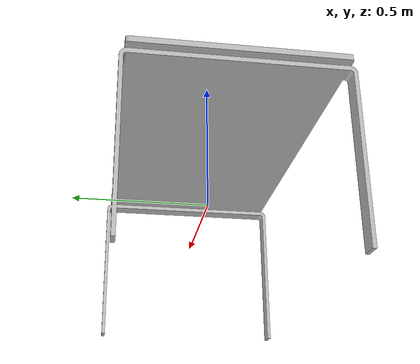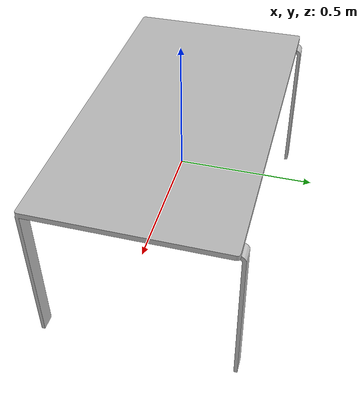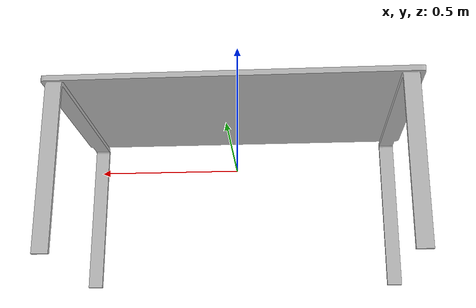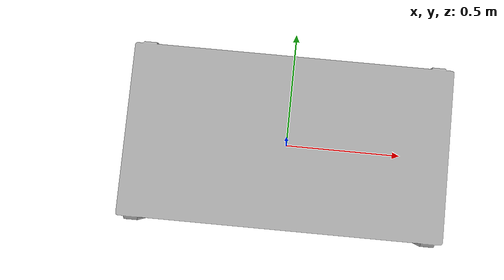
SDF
<?xml version='1.0'?>
<sdf version='1.5'>
    <model name="403_table">
        <pose>0 0 0 0 0 0</pose>
        <static>false</static>
        <link name='model_body'>
            <visual name="visual">
                <geometry>
                    <mesh>
                        <uri>model://rs_gazebo/meshes/ss_hq4/403_table/403_table_visual.dae</uri>
                        <scale>1 1 1</scale>
                    </mesh>
                </geometry>
            </visual>

            <collision name="collision">
                <geometry>
                    <mesh>
                        <uri>model://rs_gazebo/meshes/ss_hq4/403_table/403_table_collision.stl</uri>
                        <scale>1 1 1</scale>
                    </mesh>
                </geometry>
            </collision>

            <inertial>
                <pose> 0 0 0 0 0 0</pose>
                <inertia>
                    <ixx>0.499083333333</ixx>
                    <ixy>0</ixy>
                    <ixz>0</ixz>
                    <iyy>1.49908333333</iyy>
                    <iyz>0</iyz>
                    <izz>1.81666666667</izz>
                </inertia>
                <mass>10.0</mass>
            </inertial>
        </link>
    </model>
</sdf>
